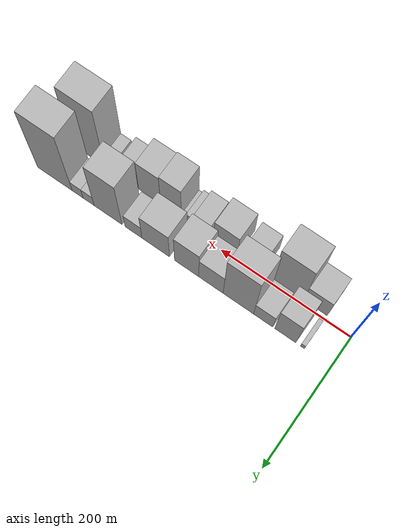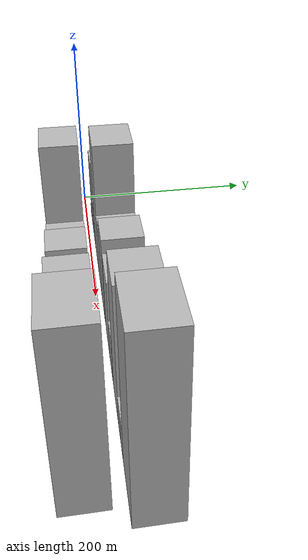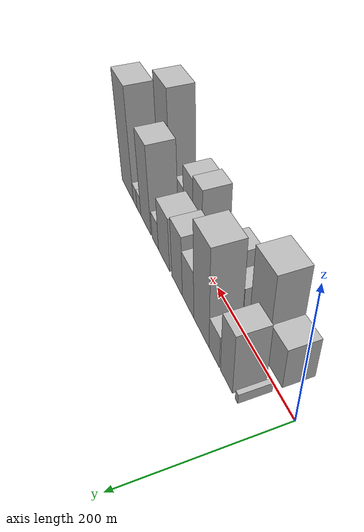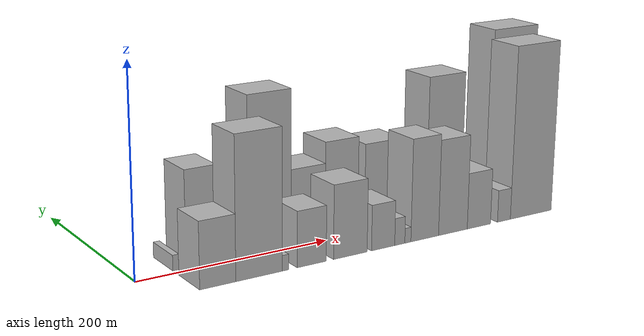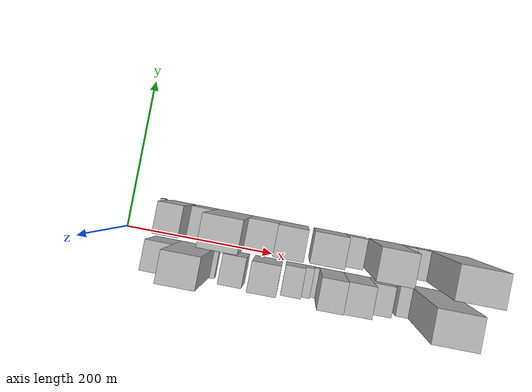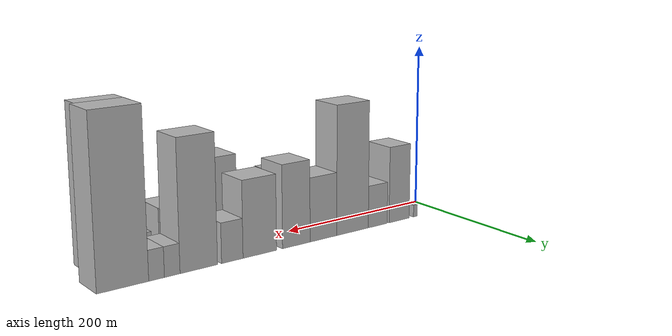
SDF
<sdf version="1.6">
 <world name="default">
  <scene>
   <sky><clouds><speed>12</speed></clouds></sky>
   <ambient>0.4 0.4 0.4 1</ambient>
   <background>0.7 0.7 0.7 1</background>
   <shadows>1</shadows>
  </scene>
  <gravity>0 0 -9.8066</gravity>
  <magnetic_field>6e-06 2.3e-05 -4.2e-05</magnetic_field>
  <physics default="0" name="default_physics" type="ode">
   <ode>
    <solver>
     <type>quick</type>
     <iters>10</iters>
     <sor>1.0</sor>
     <use_dynamic_moi_rescaling>0</use_dynamic_moi_rescaling>
    </solver>
    <constraints>
     <cfm>0</cfm>
     <erp>0.2</erp>
     <contact_max_correcting_vel>100</contact_max_correcting_vel>
     <contact_surface_layer>0.001</contact_surface_layer>
    </constraints>
   </ode>
   <max_step_size>0.004</max_step_size>
   <real_time_factor>1</real_time_factor>
   <real_time_update_rate>250</real_time_update_rate>
  </physics>
  <light name="sun" type="directional">
   <pose>0 0 10 0 0 0</pose>
   <diffuse>0.8 0.8 0.8 1</diffuse>
   <specular>0.2 0.2 0.2 1</specular>
   <attenuation>
    <range>1000</range>
    <constant>0.9</constant>
    <linear>0.01</linear>
    <quadratic>0.001</quadratic>
   </attenuation>
   <direction>-0.5 0.1 -0.9</direction>
  </light>
  <model name="building_1">
   <static>1</static>
   <pose>43.1794 26.0000 0 0.000000 0.000000 1.570796</pose>
   <link name="link">
    <pose>0 0 7.50 0 0 0</pose>
    <collision name="collision"><geometry><box><size>40.0000 6.3588 15.0000</size></box></geometry></collision>
    <visual name="visual">
     <cast_shadows>0</cast_shadows>
     <geometry><box><size>40.0000 6.3588 15.0000</size></box></geometry>
     <material>
      <script>
       <uri>model://HANNAS_wall/materials/scripts</uri>
       <uri>model://HANNAS_wall/materials/textures</uri>
       <name>vrc/HANNAS_wall</name>
      </script>
     </material>
    </visual>
   </link>
  </model>
  <model name="building_2">
   <static>1</static>
   <pose>69.4777 26.0000 0 0.000000 0.000000 1.570796</pose>
   <link name="link">
    <pose>0 0 46.50 0 0 0</pose>
    <collision name="collision"><geometry><box><size>40.0000 32.2377 93.0000</size></box></geometry></collision>
    <visual name="visual">
     <cast_shadows>0</cast_shadows>
     <geometry><box><size>40.0000 32.2377 93.0000</size></box></geometry>
     <material>
      <script>
       <uri>model://HANNAS_wall/materials/scripts</uri>
       <uri>model://HANNAS_wall/materials/textures</uri>
       <name>vrc/HANNAS_wall</name>
      </script>
     </material>
    </visual>
   </link>
  </model>
  <model name="building_3">
   <static>1</static>
   <pose>103.2718 26.0000 0 0.000000 0.000000 1.570796</pose>
   <link name="link">
    <pose>0 0 25.50 0 0 0</pose>
    <collision name="collision"><geometry><box><size>40.0000 29.3504 51.0000</size></box></geometry></collision>
    <visual name="visual">
     <cast_shadows>0</cast_shadows>
     <geometry><box><size>40.0000 29.3504 51.0000</size></box></geometry>
     <material>
      <script>
       <uri>model://HANNAS_wall/materials/scripts</uri>
       <uri>model://HANNAS_wall/materials/textures</uri>
       <name>vrc/HANNAS_wall</name>
      </script>
     </material>
    </visual>
   </link>
  </model>
  <model name="building_4">
   <static>1</static>
   <pose>141.5187 26.0000 0 0.000000 0.000000 1.570796</pose>
   <link name="link">
    <pose>0 0 76.50 0 0 0</pose>
    <collision name="collision"><geometry><box><size>40.0000 47.1435 153.0000</size></box></geometry></collision>
    <visual name="visual">
     <cast_shadows>0</cast_shadows>
     <geometry><box><size>40.0000 47.1435 153.0000</size></box></geometry>
     <material>
      <script>
       <uri>model://HANNAS_wall/materials/scripts</uri>
       <uri>model://HANNAS_wall/materials/textures</uri>
       <name>vrc/HANNAS_wall</name>
      </script>
     </material>
    </visual>
   </link>
  </model>
  <model name="building_5">
   <static>1</static>
   <pose>184.1738 26.0000 0 0.000000 0.000000 1.570796</pose>
   <link name="link">
    <pose>0 0 37.50 0 0 0</pose>
    <collision name="collision"><geometry><box><size>40.0000 38.1667 75.0000</size></box></geometry></collision>
    <visual name="visual">
     <cast_shadows>0</cast_shadows>
     <geometry><box><size>40.0000 38.1667 75.0000</size></box></geometry>
     <material>
      <script>
       <uri>model://HANNAS_wall/materials/scripts</uri>
       <uri>model://HANNAS_wall/materials/textures</uri>
       <name>vrc/HANNAS_wall</name>
      </script>
     </material>
    </visual>
   </link>
  </model>
  <model name="building_6">
   <static>1</static>
   <pose>222.2091 26.0000 0 0.000000 0.000000 1.570796</pose>
   <link name="link">
    <pose>0 0 48.00 0 0 0</pose>
    <collision name="collision"><geometry><box><size>40.0000 37.9039 96.0000</size></box></geometry></collision>
    <visual name="visual">
     <cast_shadows>0</cast_shadows>
     <geometry><box><size>40.0000 37.9039 96.0000</size></box></geometry>
     <material>
      <script>
       <uri>model://HANNAS_wall/materials/scripts</uri>
       <uri>model://HANNAS_wall/materials/textures</uri>
       <name>vrc/HANNAS_wall</name>
      </script>
     </material>
    </visual>
   </link>
  </model>
  <model name="building_7">
   <static>1</static>
   <pose>271.0043 26.0000 0 0.000000 0.000000 1.570796</pose>
   <link name="link">
    <pose>0 0 43.50 0 0 0</pose>
    <collision name="collision"><geometry><box><size>40.0000 43.6865 87.0000</size></box></geometry></collision>
    <visual name="visual">
     <cast_shadows>0</cast_shadows>
     <geometry><box><size>40.0000 43.6865 87.0000</size></box></geometry>
     <material>
      <script>
       <uri>model://HANNAS_wall/materials/scripts</uri>
       <uri>model://HANNAS_wall/materials/textures</uri>
       <name>vrc/HANNAS_wall</name>
      </script>
     </material>
    </visual>
   </link>
  </model>
  <model name="building_8">
   <static>1</static>
   <pose>306.3330 26.0000 0 0.000000 0.000000 1.570796</pose>
   <link name="link">
    <pose>0 0 22.50 0 0 0</pose>
    <collision name="collision"><geometry><box><size>40.0000 26.9708 45.0000</size></box></geometry></collision>
    <visual name="visual">
     <cast_shadows>0</cast_shadows>
     <geometry><box><size>40.0000 26.9708 45.0000</size></box></geometry>
     <material>
      <script>
       <uri>model://HANNAS_wall/materials/scripts</uri>
       <uri>model://HANNAS_wall/materials/textures</uri>
       <name>vrc/HANNAS_wall</name>
      </script>
     </material>
    </visual>
   </link>
  </model>
  <model name="building_9">
   <static>1</static>
   <pose>347.2610 26.0000 0 0.000000 0.000000 1.570796</pose>
   <link name="link">
    <pose>0 0 72.00 0 0 0</pose>
    <collision name="collision"><geometry><box><size>40.0000 44.8853 144.0000</size></box></geometry></collision>
    <visual name="visual">
     <cast_shadows>0</cast_shadows>
     <geometry><box><size>40.0000 44.8853 144.0000</size></box></geometry>
     <material>
      <script>
       <uri>model://HANNAS_wall/materials/scripts</uri>
       <uri>model://HANNAS_wall/materials/textures</uri>
       <name>vrc/HANNAS_wall</name>
      </script>
     </material>
    </visual>
   </link>
  </model>
  <model name="building_10">
   <static>1</static>
   <pose>378.7349 26.0000 0 0.000000 0.000000 1.570796</pose>
   <link name="link">
    <pose>0 0 16.50 0 0 0</pose>
    <collision name="collision"><geometry><box><size>40.0000 18.0625 33.0000</size></box></geometry></collision>
    <visual name="visual">
     <cast_shadows>0</cast_shadows>
     <geometry><box><size>40.0000 18.0625 33.0000</size></box></geometry>
     <material>
      <script>
       <uri>model://HANNAS_wall/materials/scripts</uri>
       <uri>model://HANNAS_wall/materials/textures</uri>
       <name>vrc/HANNAS_wall</name>
      </script>
     </material>
    </visual>
   </link>
  </model>
  <model name="building_11">
   <static>1</static>
   <pose>396.6693 26.0000 0 0.000000 0.000000 1.570796</pose>
   <link name="link">
    <pose>0 0 16.50 0 0 0</pose>
    <collision name="collision"><geometry><box><size>40.0000 17.8061 33.0000</size></box></geometry></collision>
    <visual name="visual">
     <cast_shadows>0</cast_shadows>
     <geometry><box><size>40.0000 17.8061 33.0000</size></box></geometry>
     <material>
      <script>
       <uri>model://HANNAS_wall/materials/scripts</uri>
       <uri>model://HANNAS_wall/materials/textures</uri>
       <name>vrc/HANNAS_wall</name>
      </script>
     </material>
    </visual>
   </link>
  </model>
  <model name="building_12">
   <static>1</static>
   <pose>433.9450 26.0000 0 0.000000 0.000000 1.570796</pose>
   <link name="link">
    <pose>0 0 91.50 0 0 0</pose>
    <collision name="collision"><geometry><box><size>40.0000 56.7453 183.0000</size></box></geometry></collision>
    <visual name="visual">
     <cast_shadows>0</cast_shadows>
     <geometry><box><size>40.0000 56.7453 183.0000</size></box></geometry>
     <material>
      <script>
       <uri>model://HANNAS_wall/materials/scripts</uri>
       <uri>model://HANNAS_wall/materials/textures</uri>
       <name>vrc/HANNAS_wall</name>
      </script>
     </material>
    </visual>
   </link>
  </model>
  <model name="building_13">
   <static>1</static>
   <pose>57.9103 -26.0000 0 0.000000 0.000000 1.570796</pose>
   <link name="link">
    <pose>0 0 31.50 0 0 0</pose>
    <collision name="collision"><geometry><box><size>40.0000 35.8206 63.0000</size></box></geometry></collision>
    <visual name="visual">
     <cast_shadows>0</cast_shadows>
     <geometry><box><size>40.0000 35.8206 63.0000</size></box></geometry>
     <material>
      <script>
       <uri>model://HANNAS_wall/materials/scripts</uri>
       <uri>model://HANNAS_wall/materials/textures</uri>
       <name>vrc/HANNAS_wall</name>
      </script>
     </material>
    </visual>
   </link>
  </model>
  <model name="building_14">
   <static>1</static>
   <pose>99.7468 -26.0000 0 0.000000 0.000000 1.570796</pose>
   <link name="link">
    <pose>0 0 67.50 0 0 0</pose>
    <collision name="collision"><geometry><box><size>40.0000 47.8523 135.0000</size></box></geometry></collision>
    <visual name="visual">
     <cast_shadows>0</cast_shadows>
     <geometry><box><size>40.0000 47.8523 135.0000</size></box></geometry>
     <material>
      <script>
       <uri>model://HANNAS_wall/materials/scripts</uri>
       <uri>model://HANNAS_wall/materials/textures</uri>
       <name>vrc/HANNAS_wall</name>
      </script>
     </material>
    </visual>
   </link>
  </model>
  <model name="building_15">
   <static>1</static>
   <pose>127.0447 -26.0000 0 0.000000 0.000000 1.570796</pose>
   <link name="link">
    <pose>0 0 7.50 0 0 0</pose>
    <collision name="collision"><geometry><box><size>40.0000 6.7435 15.0000</size></box></geometry></collision>
    <visual name="visual">
     <cast_shadows>0</cast_shadows>
     <geometry><box><size>40.0000 6.7435 15.0000</size></box></geometry>
     <material>
      <script>
       <uri>model://HANNAS_wall/materials/scripts</uri>
       <uri>model://HANNAS_wall/materials/textures</uri>
       <name>vrc/HANNAS_wall</name>
      </script>
     </material>
    </visual>
   </link>
  </model>
  <model name="building_16">
   <static>1</static>
   <pose>155.0253 -26.0000 0 0.000000 0.000000 1.570796</pose>
   <link name="link">
    <pose>0 0 27.00 0 0 0</pose>
    <collision name="collision"><geometry><box><size>40.0000 31.2176 54.0000</size></box></geometry></collision>
    <visual name="visual">
     <cast_shadows>0</cast_shadows>
     <geometry><box><size>40.0000 31.2176 54.0000</size></box></geometry>
     <material>
      <script>
       <uri>model://HANNAS_wall/materials/scripts</uri>
       <uri>model://HANNAS_wall/materials/textures</uri>
       <name>vrc/HANNAS_wall</name>
      </script>
     </material>
    </visual>
   </link>
  </model>
  <model name="building_17">
   <static>1</static>
   <pose>197.4260 -26.0000 0 0.000000 0.000000 1.570796</pose>
   <link name="link">
    <pose>0 0 36.00 0 0 0</pose>
    <collision name="collision"><geometry><box><size>40.0000 37.5838 72.0000</size></box></geometry></collision>
    <visual name="visual">
     <cast_shadows>0</cast_shadows>
     <geometry><box><size>40.0000 37.5838 72.0000</size></box></geometry>
     <material>
      <script>
       <uri>model://HANNAS_wall/materials/scripts</uri>
       <uri>model://HANNAS_wall/materials/textures</uri>
       <name>vrc/HANNAS_wall</name>
      </script>
     </material>
    </visual>
   </link>
  </model>
  <model name="building_18">
   <static>1</static>
   <pose>234.6082 -26.0000 0 0.000000 0.000000 1.570796</pose>
   <link name="link">
    <pose>0 0 22.50 0 0 0</pose>
    <collision name="collision"><geometry><box><size>40.0000 26.7806 45.0000</size></box></geometry></collision>
    <visual name="visual">
     <cast_shadows>0</cast_shadows>
     <geometry><box><size>40.0000 26.7806 45.0000</size></box></geometry>
     <material>
      <script>
       <uri>model://HANNAS_wall/materials/scripts</uri>
       <uri>model://HANNAS_wall/materials/textures</uri>
       <name>vrc/HANNAS_wall</name>
      </script>
     </material>
    </visual>
   </link>
  </model>
  <model name="building_19">
   <static>1</static>
   <pose>253.9170 -26.0000 0 0.000000 0.000000 1.570796</pose>
   <link name="link">
    <pose>0 0 13.50 0 0 0</pose>
    <collision name="collision"><geometry><box><size>40.0000 11.8370 27.0000</size></box></geometry></collision>
    <visual name="visual">
     <cast_shadows>0</cast_shadows>
     <geometry><box><size>40.0000 11.8370 27.0000</size></box></geometry>
     <material>
      <script>
       <uri>model://HANNAS_wall/materials/scripts</uri>
       <uri>model://HANNAS_wall/materials/textures</uri>
       <name>vrc/HANNAS_wall</name>
      </script>
     </material>
    </visual>
   </link>
  </model>
  <model name="building_20">
   <static>1</static>
   <pose>263.4248 -26.0000 0 0.000000 0.000000 1.570796</pose>
   <link name="link">
    <pose>0 0 7.50 0 0 0</pose>
    <collision name="collision"><geometry><box><size>40.0000 7.1785 15.0000</size></box></geometry></collision>
    <visual name="visual">
     <cast_shadows>0</cast_shadows>
     <geometry><box><size>40.0000 7.1785 15.0000</size></box></geometry>
     <material>
      <script>
       <uri>model://HANNAS_wall/materials/scripts</uri>
       <uri>model://HANNAS_wall/materials/textures</uri>
       <name>vrc/HANNAS_wall</name>
      </script>
     </material>
    </visual>
   </link>
  </model>
  <model name="building_21">
   <static>1</static>
   <pose>283.6325 -26.0000 0 0.000000 0.000000 1.570796</pose>
   <link name="link">
    <pose>0 0 51.00 0 0 0</pose>
    <collision name="collision"><geometry><box><size>40.0000 33.2369 102.0000</size></box></geometry></collision>
    <visual name="visual">
     <cast_shadows>0</cast_shadows>
     <geometry><box><size>40.0000 33.2369 102.0000</size></box></geometry>
     <material>
      <script>
       <uri>model://HANNAS_wall/materials/scripts</uri>
       <uri>model://HANNAS_wall/materials/textures</uri>
       <name>vrc/HANNAS_wall</name>
      </script>
     </material>
    </visual>
   </link>
  </model>
  <model name="building_22">
   <static>1</static>
   <pose>317.9936 -26.0000 0 0.000000 0.000000 1.570796</pose>
   <link name="link">
    <pose>0 0 48.00 0 0 0</pose>
    <collision name="collision"><geometry><box><size>40.0000 35.4853 96.0000</size></box></geometry></collision>
    <visual name="visual">
     <cast_shadows>0</cast_shadows>
     <geometry><box><size>40.0000 35.4853 96.0000</size></box></geometry>
     <material>
      <script>
       <uri>model://HANNAS_wall/materials/scripts</uri>
       <uri>model://HANNAS_wall/materials/textures</uri>
       <name>vrc/HANNAS_wall</name>
      </script>
     </material>
    </visual>
   </link>
  </model>
  <model name="building_23">
   <static>1</static>
   <pose>350.4928 -26.0000 0 0.000000 0.000000 1.570796</pose>
   <link name="link">
    <pose>0 0 28.50 0 0 0</pose>
    <collision name="collision"><geometry><box><size>40.0000 29.5131 57.0000</size></box></geometry></collision>
    <visual name="visual">
     <cast_shadows>0</cast_shadows>
     <geometry><box><size>40.0000 29.5131 57.0000</size></box></geometry>
     <material>
      <script>
       <uri>model://HANNAS_wall/materials/scripts</uri>
       <uri>model://HANNAS_wall/materials/textures</uri>
       <name>vrc/HANNAS_wall</name>
      </script>
     </material>
    </visual>
   </link>
  </model>
  <model name="building_24">
   <static>1</static>
   <pose>382.6350 -26.0000 0 0.000000 0.000000 1.570796</pose>
   <link name="link">
    <pose>0 0 16.50 0 0 0</pose>
    <collision name="collision"><geometry><box><size>40.0000 16.7714 33.0000</size></box></geometry></collision>
    <visual name="visual">
     <cast_shadows>0</cast_shadows>
     <geometry><box><size>40.0000 16.7714 33.0000</size></box></geometry>
     <material>
      <script>
       <uri>model://HANNAS_wall/materials/scripts</uri>
       <uri>model://HANNAS_wall/materials/textures</uri>
       <name>vrc/HANNAS_wall</name>
      </script>
     </material>
    </visual>
   </link>
  </model>
  <model name="building_25">
   <static>1</static>
   <pose>418.2347 -26.0000 0 0.000000 0.000000 1.570796</pose>
   <link name="link">
    <pose>0 0 88.50 0 0 0</pose>
    <collision name="collision"><geometry><box><size>40.0000 54.4279 177.0000</size></box></geometry></collision>
    <visual name="visual">
     <cast_shadows>0</cast_shadows>
     <geometry><box><size>40.0000 54.4279 177.0000</size></box></geometry>
     <material>
      <script>
       <uri>model://HANNAS_wall/materials/scripts</uri>
       <uri>model://HANNAS_wall/materials/textures</uri>
       <name>vrc/HANNAS_wall</name>
      </script>
     </material>
    </visual>
   </link>
  </model>
 </world>
</sdf>
